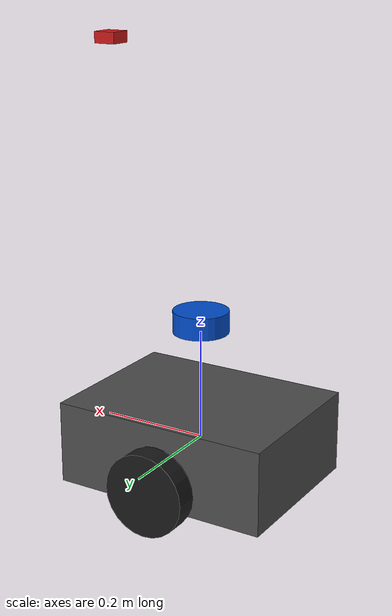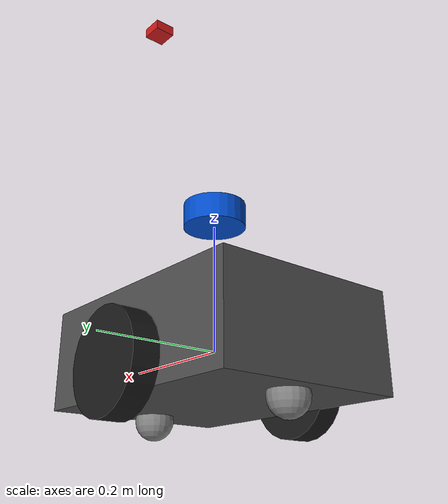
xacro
<?xml version="1.0"?>
<robot xmlns:xacro="http://www.ros.org/wiki/xacro" name="siminspect_amr">

  <!-- ===== MATERIALS ===== -->
  <material name="black"><color rgba="0.1 0.1 0.1 1.0"/></material>
  <material name="dark_grey"><color rgba="0.3 0.3 0.3 1.0"/></material>
  <material name="grey"><color rgba="0.5 0.5 0.5 1.0"/></material>
  <material name="blue"><color rgba="0.0 0.3 0.8 1.0"/></material>
  <material name="red"><color rgba="0.8 0.1 0.1 1.0"/></material>

  <!-- ===== MACROS ===== -->
  <xacro:macro name="wheel" params="name prefix x_reflect">
    <link name="${name}">
      <visual>
        <origin xyz="0 0 0" rpy="${pi/2} 0 0"/>
        <geometry>
          <cylinder radius="0.075" length="0.04"/>
        </geometry>
        <material name="black"/>
      </visual>
      <collision>
        <origin xyz="0 0 0" rpy="${pi/2} 0 0"/>
        <geometry>
          <cylinder radius="0.075" length="0.04"/>
        </geometry>
      </collision>
      <inertial>
        <mass value="0.5"/>
        <inertia ixx="0.001" ixy="0" ixz="0" iyy="0.001" iyz="0" izz="0.001"/>
      </inertial>
    </link>
    <joint name="${prefix}_wheel_joint" type="continuous">
      <origin xyz="0 ${0.17 * x_reflect} -0.0375" rpy="0 0 0"/>
      <parent link="base_link"/>
      <child link="${name}"/>
      <axis xyz="0 1 0"/>
      <limit effort="10" velocity="5"/>
    </joint>
  </xacro:macro>

  <xacro:macro name="caster" params="name x y">
    <link name="${name}">
      <visual>
        <geometry>
          <sphere radius="0.03"/>
        </geometry>
        <material name="grey"/>
      </visual>
      <collision>
        <geometry>
          <sphere radius="0.03"/>
        </geometry>
      </collision>
      <inertial>
        <mass value="0.1"/>
        <inertia ixx="0.0001" ixy="0" ixz="0" iyy="0.0001" iyz="0" izz="0.0001"/>
      </inertial>
    </link>
    <joint name="${name}_joint" type="fixed">
      <origin xyz="${x} ${y} -0.0825" rpy="0 0 0"/>
      <parent link="base_link"/>
      <child link="${name}"/>
    </joint>
    <!-- A spherical caster approximates a freely swivelling support. -->
    <gazebo reference="${name}">
      <mu1>0.001</mu1>
      <mu2>0.001</mu2>
    </gazebo>
  </xacro:macro>

  <!-- ===== BASE LINK ===== -->
  <link name="base_link">
    <visual>
      <origin xyz="0 0 0" rpy="0 0 0"/>
      <geometry>
        <box size="0.40 0.30 0.15"/>
      </geometry>
      <material name="dark_grey"/>
    </visual>
    <collision>
      <origin xyz="0 0 0" rpy="0 0 0"/>
      <geometry>
        <box size="0.40 0.30 0.15"/>
      </geometry>
    </collision>
    <inertial>
      <mass value="10.0"/>
      <inertia ixx="0.15" ixy="0" ixz="0" iyy="0.20" iyz="0" izz="0.15"/>
    </inertial>
  </link>

  <!-- ===== WHEELS ===== -->
  <xacro:wheel name="left_wheel" prefix="left" x_reflect="1"/>
  <xacro:wheel name="right_wheel" prefix="right" x_reflect="-1"/>

  <!-- ===== CASTERS ===== -->
  <xacro:caster name="caster_front" x="0.15" y="0"/>
  <xacro:caster name="caster_rear" x="-0.15" y="0"/>

  <!-- ===== IMU (inside base_link) ===== -->
  <link name="imu_link">
    <inertial>
      <mass value="0.01"/>
      <inertia ixx="0.00001" ixy="0" ixz="0" iyy="0.00001" iyz="0" izz="0.00001"/>
    </inertial>
  </link>
  <joint name="imu_joint" type="fixed">
    <origin xyz="0 0 0.02" rpy="0 0 0"/>
    <parent link="base_link"/>
    <child link="imu_link"/>
  </joint>

  <!-- ===== LiDAR (top) ===== -->
  <link name="laser_link">
    <visual>
      <origin xyz="0 0 0.02" rpy="0 0 0"/>
      <geometry>
        <cylinder radius="0.05" length="0.04"/>
      </geometry>
      <material name="blue"/>
    </visual>
    <collision>
      <origin xyz="0 0 0.02" rpy="0 0 0"/>
      <geometry>
        <cylinder radius="0.05" length="0.04"/>
      </geometry>
    </collision>
    <inertial>
      <mass value="0.2"/>
      <inertia ixx="0.0001" ixy="0" ixz="0" iyy="0.0001" iyz="0" izz="0.0001"/>
    </inertial>
  </link>
  <joint name="laser_joint" type="fixed">
    <origin xyz="0 0 0.20" rpy="0 0 0"/>
    <parent link="base_link"/>
    <child link="laser_link"/>
  </joint>

  <!-- ===== RGB CAMERA (front) ===== -->
  <link name="camera_link">
    <visual>
      <geometry>
        <box size="0.04 0.04 0.02"/>
      </geometry>
      <material name="red"/>
    </visual>
    <inertial>
      <mass value="0.05"/>
      <inertia ixx="0.00001" ixy="0" ixz="0" iyy="0.00001" iyz="0" izz="0.00001"/>
    </inertial>
  </link>
  <joint name="camera_joint" type="fixed">
    <origin xyz="0.18 0 0.70" rpy="0 0 0"/>
    <parent link="base_link"/>
    <child link="camera_link"/>
  </joint>

  <!-- Camera optical frame: ROS convention x->z, y->-x -->
  <link name="camera_optical_frame"/>
  <joint name="camera_optical_joint" type="fixed">
    <origin xyz="0 0 0" rpy="${-pi/2} 0 ${-pi/2}"/>
    <parent link="camera_link"/>
    <child link="camera_optical_frame"/>
  </joint>

  <!-- ===== INCLUDE: Gazebo plugins ===== -->
  <xacro:include filename="siminspect.gazebo.xacro"/>

  <!-- ===== INCLUDE: ros2_control ===== -->
  <xacro:include filename="siminspect.ros2_control.xacro"/>
  <xacro:siminspect_ros2_control name="SimInspectControl" prefix="" use_sim="true"/>

</robot>
